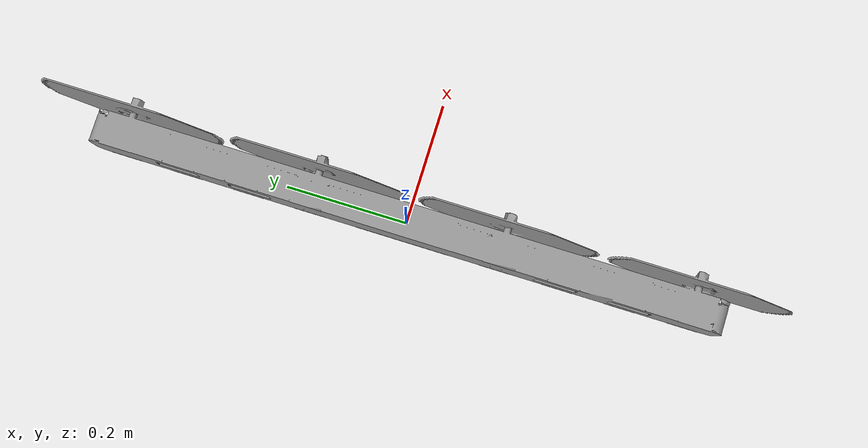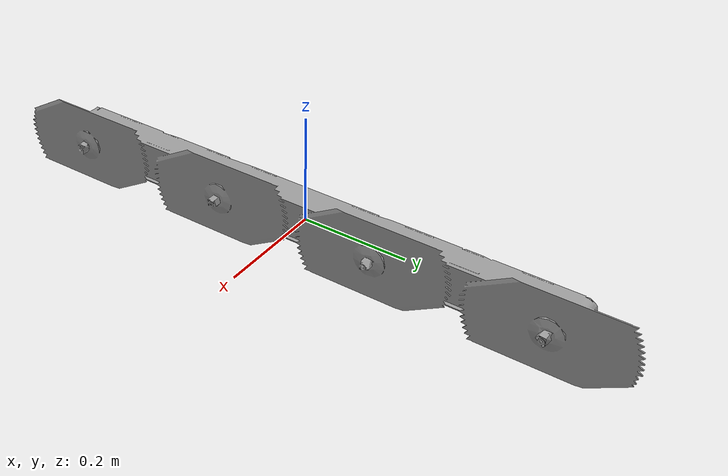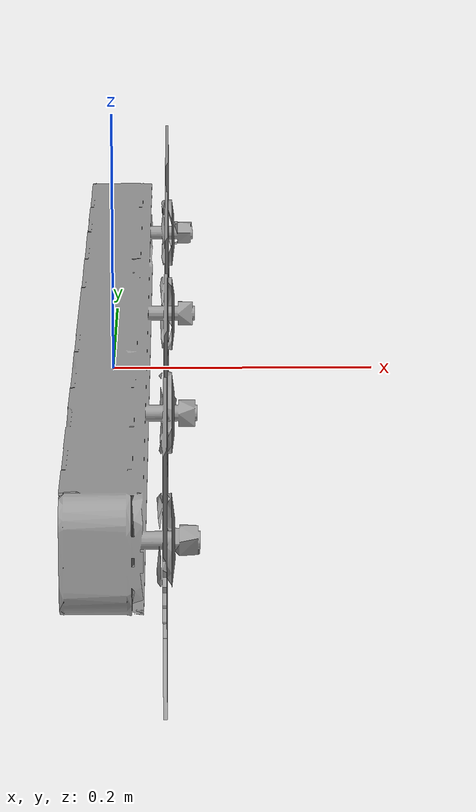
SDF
<?xml version="1.0" ?>

  <sdf version="1.5">
    <model name="tsduav_t4_multi_saw">
      <self_collide>0</self_collide>

      <link name="saw">
      <pose>0 0 -0.0  0 0 0</pose>
      <inertial>
        <pose>0 0 0 0 0 0</pose>
        <mass>3.5</mass>
        <inertia>
          <ixx>0.2</ixx>
          <iyy>0.2</iyy>
          <izz>0.2</izz>
          <ixy>0</ixy>
          <ixz>0</ixz>
          <iyz>0</iyz>
        </inertia>
      </inertial>
      <collision name="saw_collision">
        <pose>0 0 0  0 0 0</pose>
        <geometry>
          <mesh>
            <uri>model://tsduav_t4_multi_saw/meshes/saw.obj</uri>
          </mesh>
        </geometry>
        <surface>
          <contact>
            <ode>
              <min_depth>0.001</min_depth>
            </ode>
          </contact>
          <friction>
            <ode />
          </friction>
        </surface>
      </collision>
      <visual name="saw_visual">
        <geometry>
          <mesh>
            <uri>model://tsduav_t4_multi_saw/meshes/saw.STL</uri>
          </mesh>
        </geometry>
        <material>
          <script>
            <name>Gazebo/Gray</name>
          </script>
        </material>
      </visual>
    </link>
  </model>
</sdf>
